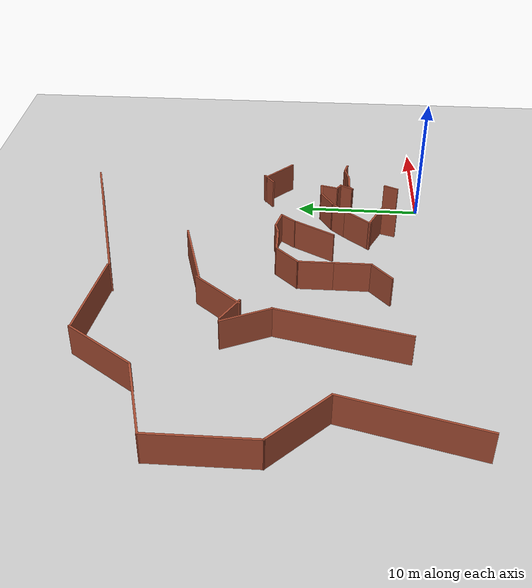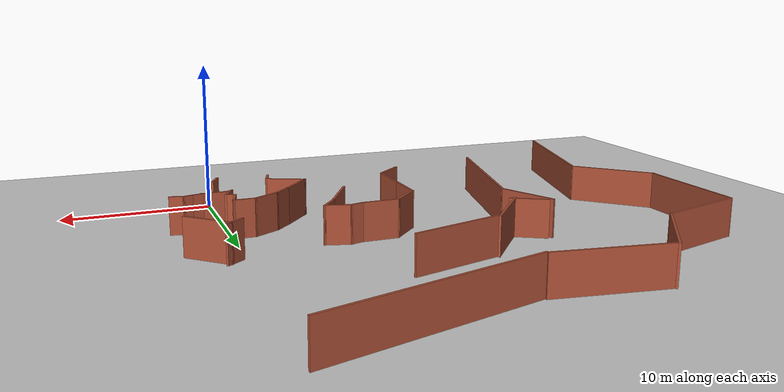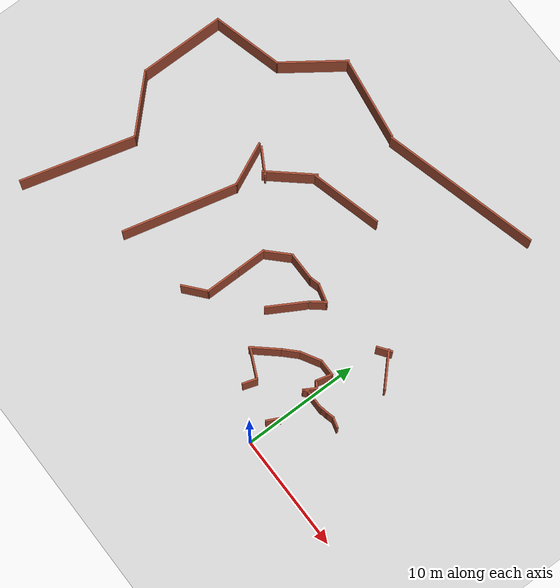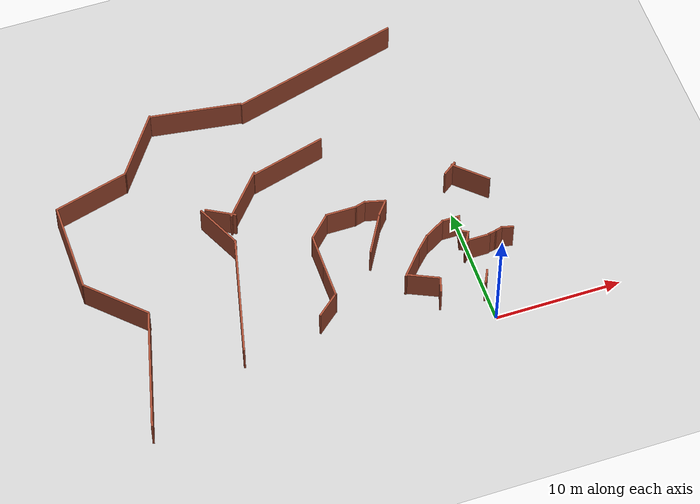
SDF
<sdf version="1.6">
 <world name="default">
  <model name="ground_plane">
   <static>1</static>
   <link name="link">
    <collision name="collision">
     <geometry><plane><normal>0 0 1</normal><size>100 100</size></plane></geometry>
    </collision>
    <visual name="visual">
     <cast_shadows>0</cast_shadows>
     <geometry><plane><normal>0 0 1</normal><size>100 100</size></plane></geometry>
     <material>
      <script><uri>file://media/materials/scripts/gazebo.material</uri><name>Gazebo/Grey</name></script>
     </material>
    </visual>
   </link>
  </model>
  <model name="Untitled1111">
   <link name="Wall_10">
    <pose>-2.6358 6.01879 0 0 0 -0.523599</pose>
    <visual name="Wall_10_Visual">
     <pose>0 0 1.25 0 -0 0</pose>
     <geometry><box><size>0.75 0.15 2.5</size></box></geometry>
     <material>
      <script><uri>file://media/materials/scripts/gazebo.material</uri><name>Gazebo/Bricks</name></script>
      <ambient>1 1 1 1</ambient>
      <shader type="pixel"/>
     </material>
     <meta><layer>0</layer></meta>
    </visual>
    <collision name="Wall_10_Collision">
     <pose>0 0 1.25 0 -0 0</pose>
     <geometry><box><size>0.75 0.15 2.5</size></box></geometry>
    </collision>
   </link>
   <link name="Wall_11">
    <pose>-2.65099 5.39248 0 0 0 -2.0944</pose>
    <visual name="Wall_11_Visual">
     <pose>0 0 1.25 0 -0 0</pose>
     <geometry><box><size>1.25 0.15 2.5</size></box></geometry>
     <material>
      <script><uri>file://media/materials/scripts/gazebo.material</uri><name>Gazebo/Bricks</name></script>
      <ambient>1 1 1 1</ambient>
      <shader type="pixel"/>
     </material>
     <meta><layer>0</layer></meta>
    </visual>
    <collision name="Wall_11_Collision">
     <pose>0 0 1.25 0 -0 0</pose>
     <geometry><box><size>1.25 0.15 2.5</size></box></geometry>
    </collision>
   </link>
   <link name="Wall_112">
    <pose>-13.2085 17.0795 0 0 0 -2.87979</pose>
    <visual name="Wall_112_Visual">
     <pose>0 0 1.25 0 -0 0</pose>
     <geometry><box><size>6.25 0.15 2.5</size></box></geometry>
     <material>
      <script><uri>file://media/materials/scripts/gazebo.material</uri><name>Gazebo/Bricks</name></script>
      <ambient>1 1 1 1</ambient>
      <shader type="pixel"/>
     </material>
     <meta><layer>0</layer></meta>
    </visual>
    <collision name="Wall_112_Collision">
     <pose>0 0 1.25 0 -0 0</pose>
     <geometry><box><size>6.25 0.15 2.5</size></box></geometry>
    </collision>
   </link>
   <link name="Wall_113">
    <pose>-17.5992 14.7841 0 0 0 -2.28433</pose>
    <visual name="Wall_113_Visual">
     <pose>0 0 1.25 0 -0 0</pose>
     <geometry><box><size>4.56448 0.15 2.5</size></box></geometry>
     <material>
      <script><uri>file://media/materials/scripts/gazebo.material</uri><name>Gazebo/Bricks</name></script>
      <ambient>1 1 1 1</ambient>
      <shader type="pixel"/>
     </material>
     <meta><layer>0</layer></meta>
    </visual>
    <collision name="Wall_113_Collision">
     <pose>0 0 1.25 0 -0 0</pose>
     <geometry><box><size>4.56448 0.15 2.5</size></box></geometry>
    </collision>
   </link>
   <link name="Wall_114">
    <pose>-19.736 13.7028 0 0 -0 2.61799</pose>
    <visual name="Wall_114_Visual">
     <pose>0 0 1.25 0 -0 0</pose>
     <geometry><box><size>2.5 0.15 2.5</size></box></geometry>
     <material>
      <script><uri>file://media/materials/scripts/gazebo.material</uri><name>Gazebo/Bricks</name></script>
      <ambient>1 1 1 1</ambient>
      <shader type="pixel"/>
     </material>
     <meta><layer>0</layer></meta>
    </visual>
    <collision name="Wall_114_Collision">
     <pose>0 0 1.25 0 -0 0</pose>
     <geometry><box><size>2.5 0.15 2.5</size></box></geometry>
    </collision>
   </link>
   <link name="Wall_115">
    <pose>-20.2762 12.5425 0 0 0 -1.14016</pose>
    <visual name="Wall_115_Visual">
     <pose>0 0 1.25 0 -0 0</pose>
     <geometry><box><size>3.99669 0.15 2.5</size></box></geometry>
     <material>
      <script><uri>file://media/materials/scripts/gazebo.material</uri><name>Gazebo/Bricks</name></script>
      <ambient>1 1 1 1</ambient>
      <shader type="pixel"/>
     </material>
     <meta><layer>0</layer></meta>
    </visual>
    <collision name="Wall_115_Collision">
     <pose>0 0 1.25 0 -0 0</pose>
     <geometry><box><size>3.99669 0.15 2.5</size></box></geometry>
    </collision>
   </link>
   <link name="Wall_116">
    <pose>-20.6372 6.01657 0 0 0 -1.80973</pose>
    <visual name="Wall_116_Visual">
     <pose>0 0 1.25 0 -0 0</pose>
     <geometry><box><size>9.98588 0.15 2.5</size></box></geometry>
     <material>
      <script><uri>file://media/materials/scripts/gazebo.material</uri><name>Gazebo/Bricks</name></script>
      <ambient>1 1 1 1</ambient>
      <shader type="pixel"/>
     </material>
     <meta><layer>0</layer></meta>
    </visual>
    <collision name="Wall_116_Collision">
     <pose>0 0 1.25 0 -0 0</pose>
     <geometry><box><size>9.98588 0.15 2.5</size></box></geometry>
    </collision>
   </link>
   <link name="Wall_12">
    <pose>-2.75032 5.05347 0 0 -0 0.663411</pose>
    <visual name="Wall_12_Visual">
     <pose>0 0 1.25 0 -0 0</pose>
     <geometry><box><size>0.595922 0.15 2.5</size></box></geometry>
     <material>
      <script><uri>file://media/materials/scripts/gazebo.material</uri><name>Gazebo/Bricks</name></script>
      <ambient>1 1 1 1</ambient>
      <shader type="pixel"/>
     </material>
     <meta><layer>0</layer></meta>
    </visual>
    <collision name="Wall_12_Collision">
     <pose>0 0 1.25 0 -0 0</pose>
     <geometry><box><size>0.595922 0.15 2.5</size></box></geometry>
    </collision>
   </link>
   <link name="Wall_13">
    <pose>-1.73967 5.15579 0 0 -0 0</pose>
    <visual name="Wall_13_Visual">
     <pose>0 0 1.25 0 -0 0</pose>
     <geometry><box><size>1.75 0.15 2.5</size></box></geometry>
     <material>
      <script><uri>file://media/materials/scripts/gazebo.material</uri><name>Gazebo/Bricks</name></script>
      <ambient>1 1 1 1</ambient>
      <shader type="pixel"/>
     </material>
     <meta><layer>0</layer></meta>
    </visual>
    <collision name="Wall_13_Collision">
     <pose>0 0 1.25 0 -0 0</pose>
     <geometry><box><size>1.75 0.15 2.5</size></box></geometry>
    </collision>
   </link>
   <link name="Wall_14">
    <pose>-0.672263 5.25149 0 0 -0 0.198157</pose>
    <visual name="Wall_14_Visual">
     <pose>0 0 1.25 0 -0 0</pose>
     <geometry><box><size>0.766849 0.15 2.5</size></box></geometry>
     <material>
      <script><uri>file://media/materials/scripts/gazebo.material</uri><name>Gazebo/Bricks</name></script>
      <ambient>1 1 1 1</ambient>
      <shader type="pixel"/>
     </material>
     <meta><layer>0</layer></meta>
    </visual>
    <collision name="Wall_14_Collision">
     <pose>0 0 1.25 0 -0 0</pose>
     <geometry><box><size>0.766849 0.15 2.5</size></box></geometry>
    </collision>
   </link>
   <link name="Wall_148">
    <pose>-18.65 23.7042 0 0 -0 2.99721</pose>
    <visual name="Wall_148_Visual">
     <pose>0 0 1.25 0 -0 0</pose>
     <geometry><box><size>7.25 0.15 2.5</size></box></geometry>
     <material>
      <script><uri>file://media/materials/scripts/gazebo.material</uri><name>Gazebo/Bricks</name></script>
      <ambient>1 1 1 1</ambient>
      <shader type="pixel"/>
     </material>
     <meta><layer>0</layer></meta>
    </visual>
    <collision name="Wall_148_Collision">
     <pose>0 0 1.25 0 -0 0</pose>
     <geometry><box><size>7.25 0.15 2.5</size></box></geometry>
    </collision>
   </link>
   <link name="Wall_149">
    <pose>-23.9657 21.9231 0 0 0 -2.19204</pose>
    <visual name="Wall_149_Visual">
     <pose>0 0 1.25 0 -0 0</pose>
     <geometry><box><size>5.96166 0.15 2.5</size></box></geometry>
     <material>
      <script><uri>file://media/materials/scripts/gazebo.material</uri><name>Gazebo/Bricks</name></script>
      <ambient>1 1 1 1</ambient>
      <shader type="pixel"/>
     </material>
     <meta><layer>0</layer></meta>
    </visual>
    <collision name="Wall_149_Collision">
     <pose>0 0 1.25 0 -0 0</pose>
     <geometry><box><size>5.96166 0.15 2.5</size></box></geometry>
    </collision>
   </link>
   <link name="Wall_15">
    <pose>-0.080096 5.38985 0 0 -0 0.261799</pose>
    <visual name="Wall_15_Visual">
     <pose>0 0 1.25 0 -0 0</pose>
     <geometry><box><size>0.75 0.15 2.5</size></box></geometry>
     <material>
      <script><uri>file://media/materials/scripts/gazebo.material</uri><name>Gazebo/Bricks</name></script>
      <ambient>1 1 1 1</ambient>
      <shader type="pixel"/>
     </material>
     <meta><layer>0</layer></meta>
    </visual>
    <collision name="Wall_15_Collision">
     <pose>0 0 1.25 0 -0 0</pose>
     <geometry><box><size>0.75 0.15 2.5</size></box></geometry>
    </collision>
   </link>
   <link name="Wall_150">
    <pose>-28.6031 18.7708 0 0 0 -2.87979</pose>
    <visual name="Wall_150_Visual">
     <pose>0 0 1.25 0 -0 0</pose>
     <geometry><box><size>6.25 0.15 2.5</size></box></geometry>
     <material>
      <script><uri>file://media/materials/scripts/gazebo.material</uri><name>Gazebo/Bricks</name></script>
      <ambient>1 1 1 1</ambient>
      <shader type="pixel"/>
     </material>
     <meta><layer>0</layer></meta>
    </visual>
    <collision name="Wall_150_Collision">
     <pose>0 0 1.25 0 -0 0</pose>
     <geometry><box><size>6.25 0.15 2.5</size></box></geometry>
    </collision>
   </link>
   <link name="Wall_151">
    <pose>-31.5491 14.3064 0 0 0 -1.5708</pose>
    <visual name="Wall_151_Visual">
     <pose>0 0 1.25 0 -0 0</pose>
     <geometry><box><size>7.5 0.15 2.5</size></box></geometry>
     <material>
      <script><uri>file://media/materials/scripts/gazebo.material</uri><name>Gazebo/Bricks</name></script>
      <ambient>1 1 1 1</ambient>
      <shader type="pixel"/>
     </material>
     <meta><layer>0</layer></meta>
    </visual>
    <collision name="Wall_151_Collision">
     <pose>0 0 1.25 0 -0 0</pose>
     <geometry><box><size>7.5 0.15 2.5</size></box></geometry>
    </collision>
   </link>
   <link name="Wall_152">
    <pose>-29.5693 8.65152 0 0 0 -0.785398</pose>
    <visual name="Wall_152_Visual">
     <pose>0 0 1.25 0 -0 0</pose>
     <geometry><box><size>5.75 0.15 2.5</size></box></geometry>
     <material>
      <script><uri>file://media/materials/scripts/gazebo.material</uri><name>Gazebo/Bricks</name></script>
      <ambient>1 1 1 1</ambient>
      <shader type="pixel"/>
     </material>
     <meta><layer>0</layer></meta>
    </visual>
    <collision name="Wall_152_Collision">
     <pose>0 0 1.25 0 -0 0</pose>
     <geometry><box><size>5.75 0.15 2.5</size></box></geometry>
    </collision>
   </link>
   <link name="Wall_153">
    <pose>-28.864 1.91444 0 0 0 -1.8326</pose>
    <visual name="Wall_153_Visual">
     <pose>0 0 1.25 0 -0 0</pose>
     <geometry><box><size>10 0.15 2.5</size></box></geometry>
     <material>
      <script><uri>file://media/materials/scripts/gazebo.material</uri><name>Gazebo/Bricks</name></script>
      <ambient>1 1 1 1</ambient>
      <shader type="pixel"/>
     </material>
     <meta><layer>0</layer></meta>
    </visual>
    <collision name="Wall_153_Collision">
     <pose>0 0 1.25 0 -0 0</pose>
     <geometry><box><size>10 0.15 2.5</size></box></geometry>
    </collision>
   </link>
   <link name="Wall_16">
    <pose>0.6202 5.3575 0 0 0 -0.261799</pose>
    <visual name="Wall_16_Visual">
     <pose>0 0 1.25 0 -0 0</pose>
     <geometry><box><size>1 0.15 2.5</size></box></geometry>
     <material>
      <script><uri>file://media/materials/scripts/gazebo.material</uri><name>Gazebo/Bricks</name></script>
      <ambient>1 1 1 1</ambient>
      <shader type="pixel"/>
     </material>
     <meta><layer>0</layer></meta>
    </visual>
    <collision name="Wall_16_Collision">
     <pose>0 0 1.25 0 -0 0</pose>
     <geometry><box><size>1 0.15 2.5</size></box></geometry>
    </collision>
   </link>
   <link name="Wall_161">
    <pose>-8.34749 24.8776 0 0 -0 0.261799</pose>
    <visual name="Wall_161_Visual">
     <pose>0 0 1.25 0 -0 0</pose>
     <geometry><box><size>14 0.15 2.5</size></box></geometry>
     <material>
      <script><uri>file://media/materials/scripts/gazebo.material</uri><name>Gazebo/Bricks</name></script>
      <ambient>1 1 1 1</ambient>
      <shader type="pixel"/>
     </material>
     <meta><layer>0</layer></meta>
    </visual>
    <collision name="Wall_161_Collision">
     <pose>0 0 1.25 0 -0 0</pose>
     <geometry><box><size>14 0.15 2.5</size></box></geometry>
    </collision>
   </link>
   <link name="Wall_3">
    <pose>-5.99948 1.9931 0 0 -0 1.25423</pose>
    <visual name="Wall_3_Visual">
     <pose>0 0 1.25 0 -0 0</pose>
     <geometry><box><size>1.28706 0.15 2.5</size></box></geometry>
     <material>
      <script><uri>file://media/materials/scripts/gazebo.material</uri><name>Gazebo/Bricks</name></script>
      <ambient>1 1 1 1</ambient>
      <shader type="pixel"/>
     </material>
     <meta><layer>0</layer></meta>
    </visual>
    <collision name="Wall_3_Collision">
     <pose>0 0 1.25 0 -0 0</pose>
     <geometry><box><size>1.28706 0.15 2.5</size></box></geometry>
    </collision>
   </link>
   <link name="Wall_30">
    <pose>-2.46568 1.63142 0 0 0 -2.0319</pose>
    <visual name="Wall_30_Visual">
     <pose>0 0 1.25 0 -0 0</pose>
     <geometry><box><size>1.26072 0.15 2.5</size></box></geometry>
     <material>
      <script><uri>file://media/materials/scripts/gazebo.material</uri><name>Gazebo/Bricks</name></script>
      <ambient>1 1 1 1</ambient>
      <shader type="pixel"/>
     </material>
     <meta><layer>0</layer></meta>
    </visual>
    <collision name="Wall_30_Collision">
     <pose>0 0 1.25 0 -0 0</pose>
     <geometry><box><size>1.26072 0.15 2.5</size></box></geometry>
    </collision>
   </link>
   <link name="Wall_4">
    <pose>-7.02821 3.14773 0 0 -0 2.70325</pose>
    <visual name="Wall_4_Visual">
     <pose>0 0 1.25 0 -0 0</pose>
     <geometry><box><size>2.60887 0.15 2.5</size></box></geometry>
     <material>
      <script><uri>file://media/materials/scripts/gazebo.material</uri><name>Gazebo/Bricks</name></script>
      <ambient>1 1 1 1</ambient>
      <shader type="pixel"/>
     </material>
     <meta><layer>0</layer></meta>
    </visual>
    <collision name="Wall_4_Collision">
     <pose>0 0 1.25 0 -0 0</pose>
     <geometry><box><size>2.60887 0.15 2.5</size></box></geometry>
    </collision>
   </link>
   <link name="Wall_5">
    <pose>-7.37481 4.55469 0 0 -0 0.852123</pose>
    <visual name="Wall_5_Visual">
     <pose>0 0 1.25 0 -0 0</pose>
     <geometry><box><size>2.66455 0.15 2.5</size></box></geometry>
     <material>
      <script><uri>file://media/materials/scripts/gazebo.material</uri><name>Gazebo/Bricks</name></script>
      <ambient>1 1 1 1</ambient>
      <shader type="pixel"/>
     </material>
     <meta><layer>0</layer></meta>
    </visual>
    <collision name="Wall_5_Collision">
     <pose>0 0 1.25 0 -0 0</pose>
     <geometry><box><size>2.66455 0.15 2.5</size></box></geometry>
    </collision>
   </link>
   <link name="Wall_52">
    <pose>-0.25176 11.1535 0 0 -0 2.38443</pose>
    <visual name="Wall_52_Visual">
     <pose>0 0 1.25 0 -0 0</pose>
     <geometry><box><size>3.29205 0.15 2.5</size></box></geometry>
     <material>
      <script><uri>file://media/materials/scripts/gazebo.material</uri><name>Gazebo/Bricks</name></script>
      <ambient>1 1 1 1</ambient>
      <shader type="pixel"/>
     </material>
     <meta><layer>0</layer></meta>
    </visual>
    <collision name="Wall_52_Collision">
     <pose>0 0 1.25 0 -0 0</pose>
     <geometry><box><size>3.29205 0.15 2.5</size></box></geometry>
    </collision>
   </link>
   <link name="Wall_53">
    <pose>-1.65181 11.9908 0 0 0 -2.51542</pose>
    <visual name="Wall_53_Visual">
     <pose>0 0 1.25 0 -0 0</pose>
     <geometry><box><size>1.39492 0.15 2.5</size></box></geometry>
     <material>
      <script><uri>file://media/materials/scripts/gazebo.material</uri><name>Gazebo/Bricks</name></script>
      <ambient>1 1 1 1</ambient>
      <shader type="pixel"/>
     </material>
     <meta><layer>0</layer></meta>
    </visual>
    <collision name="Wall_53_Collision">
     <pose>0 0 1.25 0 -0 0</pose>
     <geometry><box><size>1.39492 0.15 2.5</size></box></geometry>
    </collision>
   </link>
   <link name="Wall_6">
    <pose>-5.9921 6.055 0 0 -0 0.784425</pose>
    <visual name="Wall_6_Visual">
     <pose>0 0 1.25 0 -0 0</pose>
     <geometry><box><size>1.5452 0.15 2.5</size></box></geometry>
     <material>
      <script><uri>file://media/materials/scripts/gazebo.material</uri><name>Gazebo/Bricks</name></script>
      <ambient>1 1 1 1</ambient>
      <shader type="pixel"/>
     </material>
     <meta><layer>0</layer></meta>
    </visual>
    <collision name="Wall_6_Collision">
     <pose>0 0 1.25 0 -0 0</pose>
     <geometry><box><size>1.5452 0.15 2.5</size></box></geometry>
    </collision>
   </link>
   <link name="Wall_7">
    <pose>-4.69728 7.01029 0 0 -0 0.523599</pose>
    <visual name="Wall_7_Visual">
     <pose>0 0 1.25 0 -0 0</pose>
     <geometry><box><size>2 0.15 2.5</size></box></geometry>
     <material>
      <script><uri>file://media/materials/scripts/gazebo.material</uri><name>Gazebo/Bricks</name></script>
      <ambient>1 1 1 1</ambient>
      <shader type="pixel"/>
     </material>
     <meta><layer>0</layer></meta>
    </visual>
    <collision name="Wall_7_Collision">
     <pose>0 0 1.25 0 -0 0</pose>
     <geometry><box><size>2 0.15 2.5</size></box></geometry>
    </collision>
   </link>
   <link name="Wall_74">
    <pose>-9.19116 7.99625 0 0 -0 1.0472</pose>
    <visual name="Wall_74_Visual">
     <pose>0 0 1.25 0 -0 0</pose>
     <geometry><box><size>3.5 0.15 2.5</size></box></geometry>
     <material>
      <script><uri>file://media/materials/scripts/gazebo.material</uri><name>Gazebo/Bricks</name></script>
      <ambient>1 1 1 1</ambient>
      <shader type="pixel"/>
     </material>
     <meta><layer>0</layer></meta>
    </visual>
    <collision name="Wall_74_Collision">
     <pose>0 0 1.25 0 -0 0</pose>
     <geometry><box><size>3.5 0.15 2.5</size></box></geometry>
    </collision>
   </link>
   <link name="Wall_75">
    <pose>-7.83923 10.1343 0 0 -0 0.881131</pose>
    <visual name="Wall_75_Visual">
     <pose>0 0 1.25 0 -0 0</pose>
     <geometry><box><size>1.51268 0.15 2.5</size></box></geometry>
     <material>
      <script><uri>file://media/materials/scripts/gazebo.material</uri><name>Gazebo/Bricks</name></script>
      <ambient>1 1 1 1</ambient>
      <shader type="pixel"/>
     </material>
     <meta><layer>0</layer></meta>
    </visual>
    <collision name="Wall_75_Collision">
     <pose>0 0 1.25 0 -0 0</pose>
     <geometry><box><size>1.51268 0.15 2.5</size></box></geometry>
    </collision>
   </link>
   <link name="Wall_76">
    <pose>-8.17845 10.867 0 0 -0 2.87979</pose>
    <visual name="Wall_76_Visual">
     <pose>0 0 1.25 0 -0 0</pose>
     <geometry><box><size>1.75 0.15 2.5</size></box></geometry>
     <material>
      <script><uri>file://media/materials/scripts/gazebo.material</uri><name>Gazebo/Bricks</name></script>
      <ambient>1 1 1 1</ambient>
      <shader type="pixel"/>
     </material>
     <meta><layer>0</layer></meta>
    </visual>
    <collision name="Wall_76_Collision">
     <pose>0 0 1.25 0 -0 0</pose>
     <geometry><box><size>1.75 0.15 2.5</size></box></geometry>
    </collision>
   </link>
   <link name="Wall_77">
    <pose>-9.36171 10.964 0 0 0 -2.87979</pose>
    <visual name="Wall_77_Visual">
     <pose>0 0 1.25 0 -0 0</pose>
     <geometry><box><size>1 0.15 2.5</size></box></geometry>
     <material>
      <script><uri>file://media/materials/scripts/gazebo.material</uri><name>Gazebo/Bricks</name></script>
      <ambient>1 1 1 1</ambient>
      <shader type="pixel"/>
     </material>
     <meta><layer>0</layer></meta>
    </visual>
    <collision name="Wall_77_Collision">
     <pose>0 0 1.25 0 -0 0</pose>
     <geometry><box><size>1 0.15 2.5</size></box></geometry>
    </collision>
   </link>
   <link name="Wall_78">
    <pose>-10.9472 10.854 0 0 -0 3.14159</pose>
    <visual name="Wall_78_Visual">
     <pose>0 0 1.25 0 -0 0</pose>
     <geometry><box><size>2.5 0.15 2.5</size></box></geometry>
     <material>
      <script><uri>file://media/materials/scripts/gazebo.material</uri><name>Gazebo/Bricks</name></script>
      <ambient>1 1 1 1</ambient>
      <shader type="pixel"/>
     </material>
     <meta><layer>0</layer></meta>
    </visual>
    <collision name="Wall_78_Collision">
     <pose>0 0 1.25 0 -0 0</pose>
     <geometry><box><size>2.5 0.15 2.5</size></box></geometry>
    </collision>
   </link>
   <link name="Wall_79">
    <pose>-12.9531 10.0232 0 0 0 -2.35619</pose>
    <visual name="Wall_79_Visual">
     <pose>0 0 1.25 0 -0 0</pose>
     <geometry><box><size>2.5 0.15 2.5</size></box></geometry>
     <material>
      <script><uri>file://media/materials/scripts/gazebo.material</uri><name>Gazebo/Bricks</name></script>
      <ambient>1 1 1 1</ambient>
      <shader type="pixel"/>
     </material>
     <meta><layer>0</layer></meta>
    </visual>
    <collision name="Wall_79_Collision">
     <pose>0 0 1.25 0 -0 0</pose>
     <geometry><box><size>2.5 0.15 2.5</size></box></geometry>
    </collision>
   </link>
   <link name="Wall_8">
    <pose>-3.2212 7.47279 0 0 -0 0</pose>
    <visual name="Wall_8_Visual">
     <pose>0 0 1.25 0 -0 0</pose>
     <geometry><box><size>1.5 0.15 2.5</size></box></geometry>
     <material>
      <script><uri>file://media/materials/scripts/gazebo.material</uri><name>Gazebo/Bricks</name></script>
      <ambient>1 1 1 1</ambient>
      <shader type="pixel"/>
     </material>
     <meta><layer>0</layer></meta>
    </visual>
    <collision name="Wall_8_Collision">
     <pose>0 0 1.25 0 -0 0</pose>
     <geometry><box><size>1.5 0.15 2.5</size></box></geometry>
    </collision>
   </link>
   <link name="Wall_80">
    <pose>-13.7839 7.89233 0 0 0 -1.5708</pose>
    <visual name="Wall_80_Visual">
     <pose>0 0 1.25 0 -0 0</pose>
     <geometry><box><size>2.75 0.15 2.5</size></box></geometry>
     <material>
      <script><uri>file://media/materials/scripts/gazebo.material</uri><name>Gazebo/Bricks</name></script>
      <ambient>1 1 1 1</ambient>
      <shader type="pixel"/>
     </material>
     <meta><layer>0</layer></meta>
    </visual>
    <collision name="Wall_80_Collision">
     <pose>0 0 1.25 0 -0 0</pose>
     <geometry><box><size>2.75 0.15 2.5</size></box></geometry>
    </collision>
   </link>
   <link name="Wall_81">
    <pose>-13.7839 5.16733 0 0 0 -1.5708</pose>
    <visual name="Wall_81_Visual">
     <pose>0 0 1.25 0 -0 0</pose>
     <geometry><box><size>3 0.15 2.5</size></box></geometry>
     <material>
      <script><uri>file://media/materials/scripts/gazebo.material</uri><name>Gazebo/Bricks</name></script>
      <ambient>1 1 1 1</ambient>
      <shader type="pixel"/>
     </material>
     <meta><layer>0</layer></meta>
    </visual>
    <collision name="Wall_81_Collision">
     <pose>0 0 1.25 0 -0 0</pose>
     <geometry><box><size>3 0.15 2.5</size></box></geometry>
    </collision>
   </link>
   <link name="Wall_82">
    <pose>-14.6166 3.02994 0 0 0 -2.43391</pose>
    <visual name="Wall_82_Visual">
     <pose>0 0 1.25 0 -0 0</pose>
     <geometry><box><size>2.3417 0.15 2.5</size></box></geometry>
     <material>
      <script><uri>file://media/materials/scripts/gazebo.material</uri><name>Gazebo/Bricks</name></script>
      <ambient>1 1 1 1</ambient>
      <shader type="pixel"/>
     </material>
     <meta><layer>0</layer></meta>
    </visual>
    <collision name="Wall_82_Collision">
     <pose>0 0 1.25 0 -0 0</pose>
     <geometry><box><size>2.3417 0.15 2.5</size></box></geometry>
    </collision>
   </link>
   <link name="Wall_9">
    <pose>-2.7209 6.82079 0 0 0 -1.8326</pose>
    <visual name="Wall_9_Visual">
     <pose>0 0 1.25 0 -0 0</pose>
     <geometry><box><size>1.5 0.15 2.5</size></box></geometry>
     <material>
      <script><uri>file://media/materials/scripts/gazebo.material</uri><name>Gazebo/Bricks</name></script>
      <ambient>1 1 1 1</ambient>
      <shader type="pixel"/>
     </material>
     <meta><layer>0</layer></meta>
    </visual>
    <collision name="Wall_9_Collision">
     <pose>0 0 1.25 0 -0 0</pose>
     <geometry><box><size>1.5 0.15 2.5</size></box></geometry>
    </collision>
   </link>
   <static>1</static>
   <pose>2.40305 0.669162 0 0 -0 0</pose>
  </model>
 </world>
</sdf>
